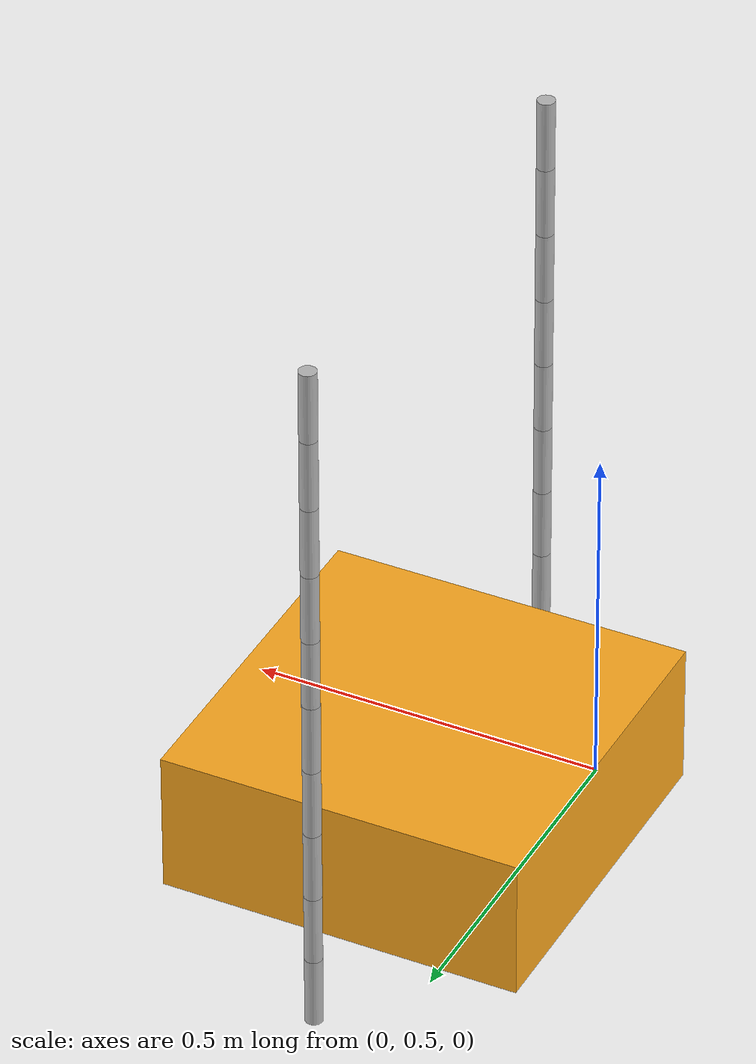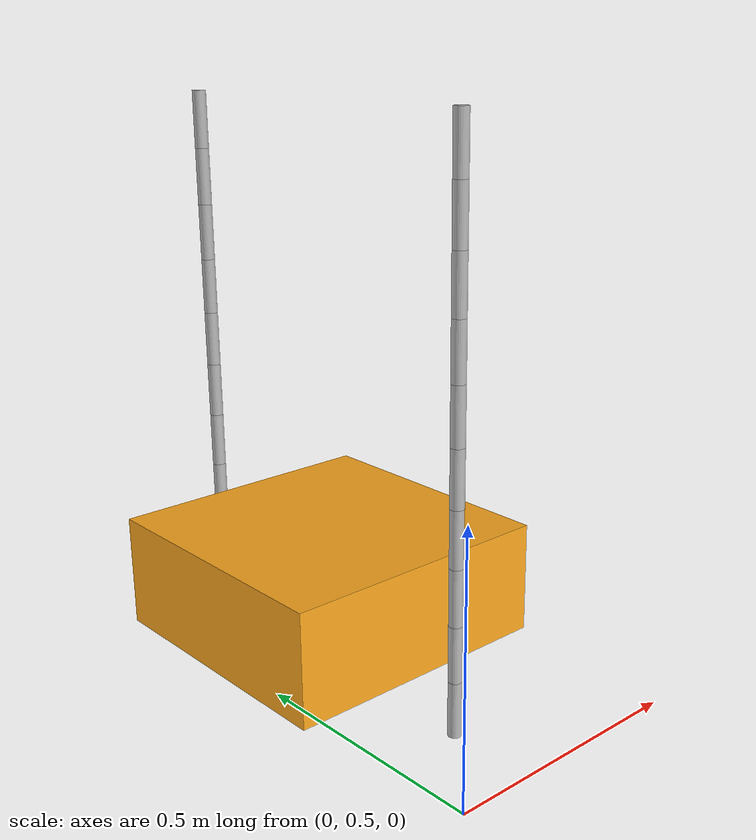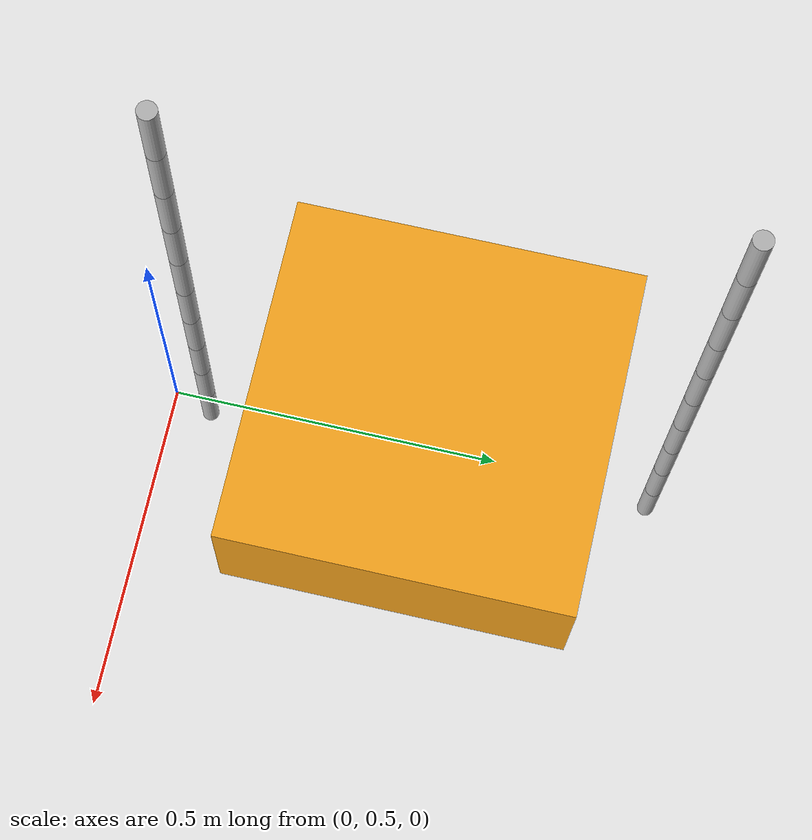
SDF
<?xml version='1.0'?>
<sdf version='1.6'>
  <model name='ropped_iris'>

    <pose>0 0 1 0 0 0</pose>
    <model name='swarm_box'>
      <model name='Corda'>
        <self_collide>1</self_collide>
        <link name='link_1'>
          <pose frame=''>0 0 0 0 -0 0</pose>
          <inertial>
            <mass>0.01</mass>
          </inertial>
          <collision name='1'>
            <pose frame=''>0 0 0 0 -0 0</pose>
            <geometry>
              <cylinder>
                <radius>0.012</radius>
                <length>0.1</length>
              </cylinder>
            </geometry>
          </collision>
          <visual name='1'>
            <pose frame=''>0 0 0 0 -0 0</pose>
            <geometry>
              <cylinder>
                <radius>0.012</radius>
                <length>0.1</length>
              </cylinder>
            </geometry>
          </visual>
        </link>
        <link name='link_2'>
          <pose frame=''>0 0 0.1 0 -0 0</pose>
          <inertial>
            <mass>0.01</mass>
          </inertial>
          <collision name='2'>
            <pose frame=''>0 0 0 0 -0 0</pose>
            <geometry>
              <cylinder>
                <radius>0.012</radius>
                <length>0.1</length>
              </cylinder>
            </geometry>
          </collision>
          <visual name='2'>
            <pose frame=''>0 0 0 0 -0 0</pose>
            <geometry>
              <cylinder>
                <radius>0.012</radius>
                <length>0.1</length>
              </cylinder>
            </geometry>
          </visual>
        </link>
        <joint name='joint 1' type='ball'>
          <parent>link_2</parent>
          <child>link_1</child>
          <pose frame=''>0 0 0.05 0 -0 0</pose>
          <physics/>
        </joint>
        <link name='link_3'>
          <pose frame=''>0 0 0.2 0 -0 0</pose>
          <inertial>
            <mass>0.01</mass>
          </inertial>
          <collision name='3'>
            <pose frame=''>0 0 0 0 -0 0</pose>
            <geometry>
              <cylinder>
                <radius>0.012</radius>
                <length>0.1</length>
              </cylinder>
            </geometry>
          </collision>
          <visual name='3'>
            <pose frame=''>0 0 0 0 -0 0</pose>
            <geometry>
              <cylinder>
                <radius>0.012</radius>
                <length>0.1</length>
              </cylinder>
            </geometry>
          </visual>
        </link>
        <joint name='joint 2' type='ball'>
          <parent>link_3</parent>
          <child>link_2</child>
          <pose frame=''>0 0 0.05 0 -0 0</pose>
          <physics/>
        </joint>
        <link name='link_4'>
          <pose frame=''>0 0 0.3 0 -0 0</pose>
          <inertial>
            <mass>0.01</mass>
          </inertial>
          <collision name='4'>
            <pose frame=''>0 0 0 0 -0 0</pose>
            <geometry>
              <cylinder>
                <radius>0.012</radius>
                <length>0.1</length>
              </cylinder>
            </geometry>
          </collision>
          <visual name='4'>
            <pose frame=''>0 0 0 0 -0 0</pose>
            <geometry>
              <cylinder>
                <radius>0.012</radius>
                <length>0.1</length>
              </cylinder>
            </geometry>
          </visual>
        </link>
        <joint name='joint 3' type='ball'>
          <parent>link_4</parent>
          <child>link_3</child>
          <pose frame=''>0 0 0.05 0 -0 0</pose>
          <physics/>
        </joint>
        <link name='link_5'>
          <pose frame=''>0 0 0.4 0 -0 0</pose>
          <inertial>
            <mass>0.01</mass>
          </inertial>
          <collision name='5'>
            <pose frame=''>0 0 0 0 -0 0</pose>
            <geometry>
              <cylinder>
                <radius>0.012</radius>
                <length>0.1</length>
              </cylinder>
            </geometry>
          </collision>
          <visual name='5'>
            <pose frame=''>0 0 0 0 -0 0</pose>
            <geometry>
              <cylinder>
                <radius>0.012</radius>
                <length>0.1</length>
              </cylinder>
            </geometry>
          </visual>
        </link>
        <joint name='joint 4' type='ball'>
          <parent>link_5</parent>
          <child>link_4</child>
          <pose frame=''>0 0 0.05 0 -0 0</pose>
          <physics/>
        </joint>
        <link name='link_6'>
          <pose frame=''>0 0 0.5 0 -0 0</pose>
          <inertial>
            <mass>0.01</mass>
          </inertial>
          <collision name='6'>
            <pose frame=''>0 0 0 0 -0 0</pose>
            <geometry>
              <cylinder>
                <radius>0.012</radius>
                <length>0.1</length>
              </cylinder>
            </geometry>
          </collision>
          <visual name='6'>
            <pose frame=''>0 0 0 0 -0 0</pose>
            <geometry>
              <cylinder>
                <radius>0.012</radius>
                <length>0.1</length>
              </cylinder>
            </geometry>
          </visual>
        </link>
        <joint name='joint 5' type='ball'>
          <parent>link_6</parent>
          <child>link_5</child>
          <pose frame=''>0 0 0.05 0 -0 0</pose>
          <physics/>
        </joint>
        <link name='link_7'>
          <pose frame=''>0 0 0.6 0 -0 0</pose>
          <inertial>
            <mass>0.01</mass>
          </inertial>
          <collision name='7'>
            <pose frame=''>0 0 0 0 -0 0</pose>
            <geometry>
              <cylinder>
                <radius>0.012</radius>
                <length>0.1</length>
              </cylinder>
            </geometry>
          </collision>
          <visual name='7'>
            <pose frame=''>0 0 0 0 -0 0</pose>
            <geometry>
              <cylinder>
                <radius>0.012</radius>
                <length>0.1</length>
              </cylinder>
            </geometry>
          </visual>
        </link>
        <joint name='joint 6' type='ball'>
          <parent>link_7</parent>
          <child>link_6</child>
          <pose frame=''>0 0 0.05 0 -0 0</pose>
          <physics/>
        </joint>
        <link name='link_8'>
          <pose frame=''>0 0 0.7 0 -0 0</pose>
          <inertial>
            <mass>0.01</mass>
          </inertial>
          <collision name='8'>
            <pose frame=''>0 0 0 0 -0 0</pose>
            <geometry>
              <cylinder>
                <radius>0.012</radius>
                <length>0.1</length>
              </cylinder>
            </geometry>
          </collision>
          <visual name='8'>
            <pose frame=''>0 0 0 0 -0 0</pose>
            <geometry>
              <cylinder>
                <radius>0.012</radius>
                <length>0.1</length>
              </cylinder>
            </geometry>
          </visual>
        </link>
        <joint name='joint 7' type='ball'>
          <parent>link_8</parent>
          <child>link_7</child>
          <pose frame=''>0 0 0.05 0 -0 0</pose>
          <physics/>
        </joint>
        <link name='link_9'>
          <pose frame=''>0 0 0.8 0 -0 0</pose>
          <inertial>
            <mass>0.01</mass>
          </inertial>
          <collision name='9'>
            <pose frame=''>0 0 0 0 -0 0</pose>
            <geometry>
              <cylinder>
                <radius>0.012</radius>
                <length>0.1</length>
              </cylinder>
            </geometry>
          </collision>
          <visual name='9'>
            <pose frame=''>0 0 0 0 -0 0</pose>
            <geometry>
              <cylinder>
                <radius>0.012</radius>
                <length>0.1</length>
              </cylinder>
            </geometry>
          </visual>
        </link>
        <joint name='joint 8' type='ball'>
          <parent>link_9</parent>
          <child>link_8</child>
          <pose frame=''>0 0 0.05 0 -0 0</pose>
          <physics/>
        </joint>
        <link name='link_10'>
          <pose frame=''>0 0 0.9 0 -0 0</pose>
          <inertial>
            <mass>0.01</mass>
          </inertial>
          <collision name='10'>
            <pose frame=''>0 0 0 0 -0 0</pose>
            <geometry>
              <cylinder>
                <radius>0.012</radius>
                <length>0.1</length>
              </cylinder>
            </geometry>
          </collision>
          <visual name='10'>
            <pose frame=''>0 0 0 0 -0 0</pose>
            <geometry>
              <cylinder>
                <radius>0.012</radius>
                <length>0.1</length>
              </cylinder>
            </geometry>
          </visual>
        </link>
        <joint name='joint 9' type='ball'>
          <parent>link_10</parent>
          <child>link_9</child>
          <pose frame=''>0 0 0.05 0 -0 0</pose>
          <physics/>
        </joint>
        <pose frame=''>-0.001562 0.329558 0.125344 0 -0 0</pose>
      </model>
      <model name='Corda_0'>
        <self_collide>1</self_collide>
        <link name='link_1'>
          <pose frame=''>0 0 0 0 -0 0</pose>
          <inertial>
            <mass>0.01</mass>
          </inertial>
          <collision name='1'>
            <pose frame=''>0 0 0 0 -0 0</pose>
            <geometry>
              <cylinder>
                <radius>0.012</radius>
                <length>0.1</length>
              </cylinder>
            </geometry>
          </collision>
          <visual name='1'>
            <pose frame=''>0 0 0 0 -0 0</pose>
            <geometry>
              <cylinder>
                <radius>0.012</radius>
                <length>0.1</length>
              </cylinder>
            </geometry>
          </visual>
        </link>
        <link name='link_2'>
          <pose frame=''>0 0 0.1 0 -0 0</pose>
          <inertial>
            <mass>0.01</mass>
          </inertial>
          <collision name='2'>
            <pose frame=''>0 0 0 0 -0 0</pose>
            <geometry>
              <cylinder>
                <radius>0.012</radius>
                <length>0.1</length>
              </cylinder>
            </geometry>
          </collision>
          <visual name='2'>
            <pose frame=''>0 0 0 0 -0 0</pose>
            <geometry>
              <cylinder>
                <radius>0.012</radius>
                <length>0.1</length>
              </cylinder>
            </geometry>
          </visual>
        </link>
        <joint name='joint 1' type='ball'>
          <parent>link_2</parent>
          <child>link_1</child>
          <pose frame=''>0 0 0.05 0 -0 0</pose>
          <physics/>
        </joint>
        <link name='link_3'>
          <pose frame=''>0 0 0.2 0 -0 0</pose>
          <inertial>
            <mass>0.01</mass>
          </inertial>
          <collision name='3'>
            <pose frame=''>0 0 0 0 -0 0</pose>
            <geometry>
              <cylinder>
                <radius>0.012</radius>
                <length>0.1</length>
              </cylinder>
            </geometry>
          </collision>
          <visual name='3'>
            <pose frame=''>0 0 0 0 -0 0</pose>
            <geometry>
              <cylinder>
                <radius>0.012</radius>
                <length>0.1</length>
              </cylinder>
            </geometry>
          </visual>
        </link>
        <joint name='joint 2' type='ball'>
          <parent>link_3</parent>
          <child>link_2</child>
          <pose frame=''>0 0 0.05 0 -0 0</pose>
          <physics/>
        </joint>
        <link name='link_4'>
          <pose frame=''>0 0 0.3 0 -0 0</pose>
          <inertial>
            <mass>0.01</mass>
          </inertial>
          <collision name='4'>
            <pose frame=''>0 0 0 0 -0 0</pose>
            <geometry>
              <cylinder>
                <radius>0.012</radius>
                <length>0.1</length>
              </cylinder>
            </geometry>
          </collision>
          <visual name='4'>
            <pose frame=''>0 0 0 0 -0 0</pose>
            <geometry>
              <cylinder>
                <radius>0.012</radius>
                <length>0.1</length>
              </cylinder>
            </geometry>
          </visual>
        </link>
        <joint name='joint 3' type='ball'>
          <parent>link_4</parent>
          <child>link_3</child>
          <pose frame=''>0 0 0.05 0 -0 0</pose>
          <physics/>
        </joint>
        <link name='link_5'>
          <pose frame=''>0 0 0.4 0 -0 0</pose>
          <inertial>
            <mass>0.01</mass>
          </inertial>
          <collision name='5'>
            <pose frame=''>0 0 0 0 -0 0</pose>
            <geometry>
              <cylinder>
                <radius>0.012</radius>
                <length>0.1</length>
              </cylinder>
            </geometry>
          </collision>
          <visual name='5'>
            <pose frame=''>0 0 0 0 -0 0</pose>
            <geometry>
              <cylinder>
                <radius>0.012</radius>
                <length>0.1</length>
              </cylinder>
            </geometry>
          </visual>
        </link>
        <joint name='joint 4' type='ball'>
          <parent>link_5</parent>
          <child>link_4</child>
          <pose frame=''>0 0 0.05 0 -0 0</pose>
          <physics/>
        </joint>
        <link name='link_6'>
          <pose frame=''>0 0 0.5 0 -0 0</pose>
          <inertial>
            <mass>0.01</mass>
          </inertial>
          <collision name='6'>
            <pose frame=''>0 0 0 0 -0 0</pose>
            <geometry>
              <cylinder>
                <radius>0.012</radius>
                <length>0.1</length>
              </cylinder>
            </geometry>
          </collision>
          <visual name='6'>
            <pose frame=''>0 0 0 0 -0 0</pose>
            <geometry>
              <cylinder>
                <radius>0.012</radius>
                <length>0.1</length>
              </cylinder>
            </geometry>
          </visual>
        </link>
        <joint name='joint 5' type='ball'>
          <parent>link_6</parent>
          <child>link_5</child>
          <pose frame=''>0 0 0.05 0 -0 0</pose>
          <physics/>
        </joint>
        <link name='link_7'>
          <pose frame=''>0 0 0.6 0 -0 0</pose>
          <inertial>
            <mass>0.01</mass>
          </inertial>
          <collision name='7'>
            <pose frame=''>0 0 0 0 -0 0</pose>
            <geometry>
              <cylinder>
                <radius>0.012</radius>
                <length>0.1</length>
              </cylinder>
            </geometry>
          </collision>
          <visual name='7'>
            <pose frame=''>0 0 0 0 -0 0</pose>
            <geometry>
              <cylinder>
                <radius>0.012</radius>
                <length>0.1</length>
              </cylinder>
            </geometry>
          </visual>
        </link>
        <joint name='joint 6' type='ball'>
          <parent>link_7</parent>
          <child>link_6</child>
          <pose frame=''>0 0 0.05 0 -0 0</pose>
          <physics/>
        </joint>
        <link name='link_8'>
          <pose frame=''>0 0 0.7 0 -0 0</pose>
          <inertial>
            <mass>0.01</mass>
          </inertial>
          <collision name='8'>
            <pose frame=''>0 0 0 0 -0 0</pose>
            <geometry>
              <cylinder>
                <radius>0.012</radius>
                <length>0.1</length>
              </cylinder>
            </geometry>
          </collision>
          <visual name='8'>
            <pose frame=''>0 0 0 0 -0 0</pose>
            <geometry>
              <cylinder>
                <radius>0.012</radius>
                <length>0.1</length>
              </cylinder>
            </geometry>
          </visual>
        </link>
        <joint name='joint 7' type='ball'>
          <parent>link_8</parent>
          <child>link_7</child>
          <pose frame=''>0 0 0.05 0 -0 0</pose>
          <physics/>
        </joint>
        <link name='link_9'>
          <pose frame=''>0 0 0.8 0 -0 0</pose>
          <inertial>
            <mass>0.01</mass>
          </inertial>
          <collision name='9'>
            <pose frame=''>0 0 0 0 -0 0</pose>
            <geometry>
              <cylinder>
                <radius>0.012</radius>
                <length>0.1</length>
              </cylinder>
            </geometry>
          </collision>
          <visual name='9'>
            <pose frame=''>0 0 0 0 -0 0</pose>
            <geometry>
              <cylinder>
                <radius>0.012</radius>
                <length>0.1</length>
              </cylinder>
            </geometry>
          </visual>
        </link>
        <joint name='joint 8' type='ball'>
          <parent>link_9</parent>
          <child>link_8</child>
          <pose frame=''>0 0 0.05 0 -0 0</pose>
          <physics/>
        </joint>
        <link name='link_10'>
          <pose frame=''>0 0 0.9 0 -0 0</pose>
          <inertial>
            <mass>0.01</mass>
          </inertial>
          <collision name='10'>
            <pose frame=''>0 0 0 0 -0 0</pose>
            <geometry>
              <cylinder>
                <radius>0.012</radius>
                <length>0.1</length>
              </cylinder>
            </geometry>
          </collision>
          <visual name='10'>
            <pose frame=''>0 0 0 0 -0 0</pose>
            <geometry>
              <cylinder>
                <radius>0.012</radius>
                <length>0.1</length>
              </cylinder>
            </geometry>
          </visual>
        </link>
        <joint name='joint 9' type='ball'>
          <parent>link_10</parent>
          <child>link_9</child>
          <pose frame=''>0 0 0.05 0 -0 0</pose>
          <physics/>
        </joint>
        <pose frame=''>-0.001562 -0.33112 0.125344 0 -0 0</pose>
      </model>
      <model name='swarm_box'>
        <link name='link_box'>
          <pose frame=''>0 0 0.5 0 -0 0</pose>
          <visual name='visual'>
            <geometry>
              <box>
                <size>0.5 0.5 0.2</size>
              </box>
            </geometry>
            <material>
              <lighting>1</lighting>
              <script>
                <uri>file://media/materials/scripts/gazebo.material</uri>
                <name>Gazebo/Grey</name>
              </script>
              <shader type='vertex'>
                <normal_map>__default__</normal_map>
              </shader>
              <ambient>1 0 0 1</ambient>
              <diffuse>0.99 0.66 0.12 1</diffuse>
              <specular>0.01 0.01 0.01 1</specular>
              <emissive>1 0 0 1</emissive>
            </material>
            <transparency>0</transparency>
            <cast_shadows>1</cast_shadows>
          </visual>
          <collision name='collision'>
            <geometry>
              <box>
                <size>0.5 0.5 0.2</size>
              </box>
            </geometry>
          </collision>
        </link>
        <pose frame=''>0.003124 0.001562 -0.250688 0 -0 0</pose>
      </model>
      <joint name='link_1_JOINT_1' type='ball'>
        <parent>Corda::link_1</parent>
        <child>swarm_box::link_box</child>
        <pose frame=''>0 0 0 0 -0 0</pose>
        <physics>
          <ode>
            <limit>
              <cfm>0</cfm>
              <erp>0.2</erp>
            </limit>
            <suspension>
              <cfm>0</cfm>
              <erp>0.2</erp>
            </suspension>
          </ode>
        </physics>
      </joint>
      <joint name='link_1_JOINT_0' type='ball'>
        <parent>Corda_0::link_1</parent>
        <child>swarm_box::link_box</child>
        <pose frame=''>0 0 0 0 -0 0</pose>
        <physics>
          <ode>
            <limit>
              <cfm>0</cfm>
              <erp>0.2</erp>
            </limit>
            <suspension>
              <cfm>0</cfm>
              <erp>0.2</erp>
            </suspension>
          </ode>
        </physics>
      </joint>
      <static>0</static>
      <allow_auto_disable>1</allow_auto_disable>
      <pose frame=''>0.050562 0.903623 -0.983598 0 -0 0</pose>
    </model>
  </model>
</sdf>
